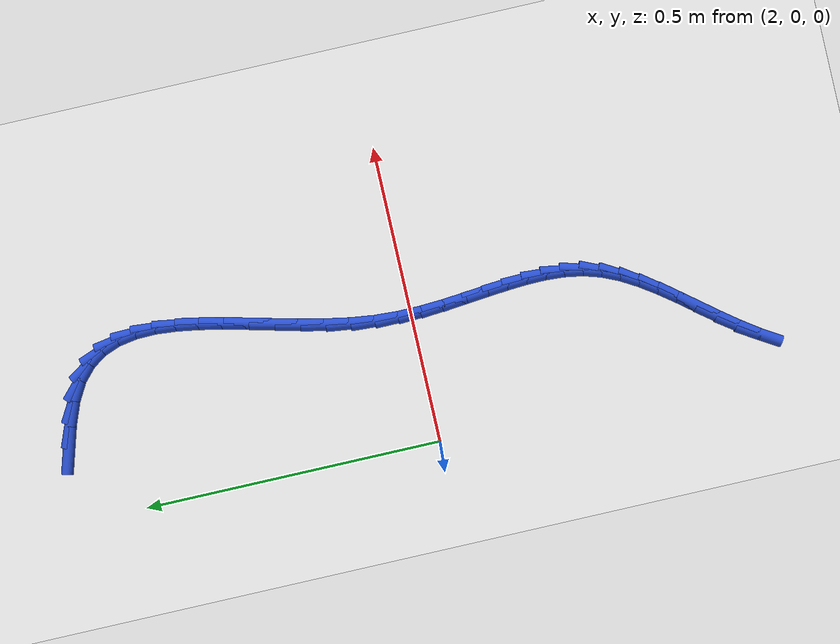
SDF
<sdf version="1.6">
 <world name="default">
  <model name="ground_plane">
   <static>1</static>
   <link name="link">
    <collision name="collision">
     <geometry><plane><normal>0 0 1</normal><size>100 100</size></plane></geometry>
     <surface><friction><ode><mu>100</mu><mu2>50</mu2></ode></friction></surface>
    </collision>
    <visual name="visual">
     <cast_shadows>0</cast_shadows>
     <geometry><plane><normal>0 0 1</normal><size>100 100</size></plane></geometry>
     <material>
      <script><uri>file://media/materials/scripts/gazebo.material</uri><name>Gazebo/WhiteGlow</name></script>
     </material>
    </visual>
   </link>
  </model>
  <model name="line">
   <link name="link_91">
    <pose>2.1238151320174015 0.6030887399953643 0.01 0 1.57 -0.29053588257929147</pose>
    <collision name="collision">
     <geometry><cylinder><radius>0.01</radius><length>0.08</length></cylinder></geometry>
    </collision>
    <visual name="visual">
     <material>
      <script><name>Gazebo/Blue</name><uri>file://media/materials/scripts/gazebo.material</uri></script>
     </material>
     <geometry><cylinder><radius>0.01</radius><length>0.08</length></cylinder></geometry>
    </visual>
   </link>
   <link name="link_92">
    <pose>2.164757541474575 0.5908471035624472 0.01 0 1.57 -0.3732599412215233</pose>
    <collision name="collision">
     <geometry><cylinder><radius>0.01</radius><length>0.08</length></cylinder></geometry>
    </collision>
    <visual name="visual">
     <material>
      <script><name>Gazebo/Blue</name><uri>file://media/materials/scripts/gazebo.material</uri></script>
     </material>
     <geometry><cylinder><radius>0.01</radius><length>0.08</length></cylinder></geometry>
    </visual>
   </link>
   <link name="link_93">
    <pose>2.2017538315727636 0.5763586799684173 0.01 0 1.57 -0.5231308511920362</pose>
    <collision name="collision">
     <geometry><cylinder><radius>0.01</radius><length>0.08</length></cylinder></geometry>
    </collision>
    <visual name="visual">
     <material>
      <script><name>Gazebo/Blue</name><uri>file://media/materials/scripts/gazebo.material</uri></script>
     </material>
     <geometry><cylinder><radius>0.01</radius><length>0.08</length></cylinder></geometry>
    </visual>
   </link>
   <link name="link_94">
    <pose>2.2325216295730774 0.5586140743322587 0.01 0 1.57 -0.744647816728111</pose>
    <collision name="collision">
     <geometry><cylinder><radius>0.01</radius><length>0.08</length></cylinder></geometry>
    </collision>
    <visual name="visual">
     <material>
      <script><name>Gazebo/Blue</name><uri>file://media/materials/scripts/gazebo.material</uri></script>
     </material>
     <geometry><cylinder><radius>0.01</radius><length>0.08</length></cylinder></geometry>
    </visual>
   </link>
   <link name="link_95">
    <pose>2.255876177495582 0.5370893839236424 0.01 0 1.57 -0.9868501659960137</pose>
    <collision name="collision">
     <geometry><cylinder><radius>0.01</radius><length>0.08</length></cylinder></geometry>
    </collision>
    <visual name="visual">
     <material>
      <script><name>Gazebo/Blue</name><uri>file://media/materials/scripts/gazebo.material</uri></script>
     </material>
     <geometry><cylinder><radius>0.01</radius><length>0.08</length></cylinder></geometry>
    </visual>
   </link>
   <link name="link_96">
    <pose>2.2724215137339296 0.5120519185861167 0.01 0 1.57 -1.2143293446025882</pose>
    <collision name="collision">
     <geometry><cylinder><radius>0.01</radius><length>0.08</length></cylinder></geometry>
    </collision>
    <visual name="visual">
     <material>
      <script><name>Gazebo/Blue</name><uri>file://media/materials/scripts/gazebo.material</uri></script>
     </material>
     <geometry><cylinder><radius>0.01</radius><length>0.08</length></cylinder></geometry>
    </visual>
   </link>
   <link name="link_97">
    <pose>2.2829262523897573 0.4838417825692519 0.01 0 1.57 -1.4037998761086086</pose>
    <collision name="collision">
     <geometry><cylinder><radius>0.01</radius><length>0.08</length></cylinder></geometry>
    </collision>
    <visual name="visual">
     <material>
      <script><name>Gazebo/Blue</name><uri>file://media/materials/scripts/gazebo.material</uri></script>
     </material>
     <geometry><cylinder><radius>0.01</radius><length>0.08</length></cylinder></geometry>
    </visual>
   </link>
   <link name="link_98">
    <pose>2.288159007564697 0.452799080122617 0.01 0 1.57 -1.549049875787846</pose>
    <collision name="collision">
     <geometry><cylinder><radius>0.01</radius><length>0.08</length></cylinder></geometry>
    </collision>
    <visual name="visual">
     <material>
      <script><name>Gazebo/Blue</name><uri>file://media/materials/scripts/gazebo.material</uri></script>
     </material>
     <geometry><cylinder><radius>0.01</radius><length>0.08</length></cylinder></geometry>
    </visual>
   </link>
   <link name="link_99">
    <pose>2.2888883933603843 0.41926391549578257 0.01 0 1.57 1.486781109514399</pose>
    <collision name="collision">
     <geometry><cylinder><radius>0.01</radius><length>0.08</length></cylinder></geometry>
    </collision>
    <visual name="visual">
     <material>
      <script><name>Gazebo/Blue</name><uri>file://media/materials/scripts/gazebo.material</uri></script>
     </material>
     <geometry><cylinder><radius>0.01</radius><length>0.08</length></cylinder></geometry>
    </visual>
   </link>
   <link name="link_100">
    <pose>2.285883023878452 0.38357639293831736 0.01 0 1.57 1.412880978112483</pose>
    <collision name="collision">
     <geometry><cylinder><radius>0.01</radius><length>0.08</length></cylinder></geometry>
    </collision>
    <visual name="visual">
     <material>
      <script><name>Gazebo/Blue</name><uri>file://media/materials/scripts/gazebo.material</uri></script>
     </material>
     <geometry><cylinder><radius>0.01</radius><length>0.08</length></cylinder></geometry>
    </visual>
   </link>
   <link name="link_101">
    <pose>2.279911513220536 0.34607661669979217 0.01 0 1.57 1.3641744351505958</pose>
    <collision name="collision">
     <geometry><cylinder><radius>0.01</radius><length>0.08</length></cylinder></geometry>
    </collision>
    <visual name="visual">
     <material>
      <script><name>Gazebo/Blue</name><uri>file://media/materials/scripts/gazebo.material</uri></script>
     </material>
     <geometry><cylinder><radius>0.01</radius><length>0.08</length></cylinder></geometry>
    </visual>
   </link>
   <link name="link_102">
    <pose>2.2717424754882694 0.30710469102977567 0.01 0 1.57 1.3358880803590423</pose>
    <collision name="collision">
     <geometry><cylinder><radius>0.01</radius><length>0.08</length></cylinder></geometry>
    </collision>
    <visual name="visual">
     <material>
      <script><name>Gazebo/Blue</name><uri>file://media/materials/scripts/gazebo.material</uri></script>
     </material>
     <geometry><cylinder><radius>0.01</radius><length>0.08</length></cylinder></geometry>
    </visual>
   </link>
   <link name="link_103">
    <pose>2.262144524783287 0.2670007201778386 0.01 0 1.57 1.3250290937424412</pose>
    <collision name="collision">
     <geometry><cylinder><radius>0.01</radius><length>0.08</length></cylinder></geometry>
    </collision>
    <visual name="visual">
     <material>
      <script><name>Gazebo/Blue</name><uri>file://media/materials/scripts/gazebo.material</uri></script>
     </material>
     <geometry><cylinder><radius>0.01</radius><length>0.08</length></cylinder></geometry>
    </visual>
   </link>
   <link name="link_104">
    <pose>2.251886275207222 0.2261048083935497 0.01 0 1.57 1.3300788155561363</pose>
    <collision name="collision">
     <geometry><cylinder><radius>0.01</radius><length>0.08</length></cylinder></geometry>
    </collision>
    <visual name="visual">
     <material>
      <script><name>Gazebo/Blue</name><uri>file://media/materials/scripts/gazebo.material</uri></script>
     </material>
     <geometry><cylinder><radius>0.01</radius><length>0.08</length></cylinder></geometry>
    </visual>
   </link>
   <link name="link_105">
    <pose>2.2417363408617095 0.18475705992647973 0.01 0 1.57 1.3507536034940444</pose>
    <collision name="collision">
     <geometry><cylinder><radius>0.01</radius><length>0.08</length></cylinder></geometry>
    </collision>
    <visual name="visual">
     <material>
      <script><name>Gazebo/Blue</name><uri>file://media/materials/scripts/gazebo.material</uri></script>
     </material>
     <geometry><cylinder><radius>0.01</radius><length>0.08</length></cylinder></geometry>
    </visual>
   </link>
   <link name="link_106">
    <pose>2.232463335848384 0.14329757902619733 0.01 0 1.57 1.3878714457839014</pose>
    <collision name="collision">
     <geometry><cylinder><radius>0.01</radius><length>0.08</length></cylinder></geometry>
    </collision>
    <visual name="visual">
     <material>
      <script><name>Gazebo/Blue</name><uri>file://media/materials/scripts/gazebo.material</uri></script>
     </material>
     <geometry><cylinder><radius>0.01</radius><length>0.08</length></cylinder></geometry>
    </visual>
   </link>
   <link name="link_107">
    <pose>2.2248358742688783 0.10206646994227335 0.01 0 1.57 1.4432832369738262</pose>
    <collision name="collision">
     <geometry><cylinder><radius>0.01</radius><length>0.08</length></cylinder></geometry>
    </collision>
    <visual name="visual">
     <material>
      <script><name>Gazebo/Blue</name><uri>file://media/materials/scripts/gazebo.material</uri></script>
     </material>
     <geometry><cylinder><radius>0.01</radius><length>0.08</length></cylinder></geometry>
    </visual>
   </link>
   <link name="link_108">
    <pose>2.2196225702248285 0.06140383692427645 0.01 0 1.57 1.5143344800301193</pose>
    <collision name="collision">
     <geometry><cylinder><radius>0.01</radius><length>0.08</length></cylinder></geometry>
    </collision>
    <visual name="visual">
     <material>
      <script><name>Gazebo/Blue</name><uri>file://media/materials/scripts/gazebo.material</uri></script>
     </material>
     <geometry><cylinder><radius>0.01</radius><length>0.08</length></cylinder></geometry>
    </visual>
   </link>
   <link name="link_109">
    <pose>2.2173728172626097 0.02160064432337661 0.01 0 1.57 -1.5636681695027848</pose>
    <collision name="collision">
     <geometry><cylinder><radius>0.01</radius><length>0.08</length></cylinder></geometry>
    </collision>
    <visual name="visual">
     <material>
      <script><name>Gazebo/Blue</name><uri>file://media/materials/scripts/gazebo.material</uri></script>
     </material>
     <geometry><cylinder><radius>0.01</radius><length>0.08</length></cylinder></geometry>
    </visual>
   </link>
   <link name="link_110">
    <pose>2.2176499207075384 -0.017273182430266442 0.01 0 1.57 -1.5157568466034474</pose>
    <collision name="collision">
     <geometry><cylinder><radius>0.01</radius><length>0.08</length></cylinder></geometry>
    </collision>
    <visual name="visual">
     <material>
      <script><name>Gazebo/Blue</name><uri>file://media/materials/scripts/gazebo.material</uri></script>
     </material>
     <geometry><cylinder><radius>0.01</radius><length>0.08</length></cylinder></geometry>
    </visual>
   </link>
   <link name="link_111">
    <pose>2.2197400456669727 -0.055209840922908544 0.01 0 1.57 -1.484792430941129</pose>
    <collision name="collision">
     <geometry><cylinder><radius>0.01</radius><length>0.08</length></cylinder></geometry>
    </collision>
    <visual name="visual">
     <material>
      <script><name>Gazebo/Blue</name><uri>file://media/materials/scripts/gazebo.material</uri></script>
     </material>
     <geometry><cylinder><radius>0.01</radius><length>0.08</length></cylinder></geometry>
    </visual>
   </link>
   <link name="link_112">
    <pose>2.2229293424904406 -0.0922015320488824 0.01 0 1.57 -1.4719319690370856</pose>
    <collision name="collision">
     <geometry><cylinder><radius>0.01</radius><length>0.08</length></cylinder></geometry>
    </collision>
    <visual name="visual">
     <material>
      <script><name>Gazebo/Blue</name><uri>file://media/materials/scripts/gazebo.material</uri></script>
     </material>
     <geometry><cylinder><radius>0.01</radius><length>0.08</length></cylinder></geometry>
    </visual>
   </link>
   <link name="link_113">
    <pose>2.226503961527471 -0.12824045670252032 0.01 0 1.57 -1.4785208266748302</pose>
    <collision name="collision">
     <geometry><cylinder><radius>0.01</radius><length>0.08</length></cylinder></geometry>
    </collision>
    <visual name="visual">
     <material>
      <script><name>Gazebo/Blue</name><uri>file://media/materials/scripts/gazebo.material</uri></script>
     </material>
     <geometry><cylinder><radius>0.01</radius><length>0.08</length></cylinder></geometry>
    </visual>
   </link>
   <link name="link_114">
    <pose>2.229750053127594 -0.16331881577815544 0.01 0 1.57 -1.5062798663819272</pose>
    <collision name="collision">
     <geometry><cylinder><radius>0.01</radius><length>0.08</length></cylinder></geometry>
    </collision>
    <visual name="visual">
     <material>
      <script><name>Gazebo/Blue</name><uri>file://media/materials/scripts/gazebo.material</uri></script>
     </material>
     <geometry><cylinder><radius>0.01</radius><length>0.08</length></cylinder></geometry>
    </visual>
   </link>
   <link name="link_115">
    <pose>2.2319537676403374 -0.19742881017011824 0.01 0 1.57 -1.5572916832677732</pose>
    <collision name="collision">
     <geometry><cylinder><radius>0.01</radius><length>0.08</length></cylinder></geometry>
    </collision>
    <visual name="visual">
     <material>
      <script><name>Gazebo/Blue</name><uri>file://media/materials/scripts/gazebo.material</uri></script>
     </material>
     <geometry><cylinder><radius>0.01</radius><length>0.08</length></cylinder></geometry>
    </visual>
   </link>
   <link name="link_116">
    <pose>2.2324012554152315 -0.23056264077274197 0.01 0 1.57 1.5079678698022</pose>
    <collision name="collision">
     <geometry><cylinder><radius>0.01</radius><length>0.08</length></cylinder></geometry>
    </collision>
    <visual name="visual">
     <material>
      <script><name>Gazebo/Blue</name><uri>file://media/materials/scripts/gazebo.material</uri></script>
     </material>
     <geometry><cylinder><radius>0.01</radius><length>0.08</length></cylinder></geometry>
    </visual>
   </link>
   <link name="link_117">
    <pose>2.2303786668018044 -0.2627125084803588 0.01 0 1.57 1.4052262076336153</pose>
    <collision name="collision">
     <geometry><cylinder><radius>0.01</radius><length>0.08</length></cylinder></geometry>
    </collision>
    <visual name="visual">
     <material>
      <script><name>Gazebo/Blue</name><uri>file://media/materials/scripts/gazebo.material</uri></script>
     </material>
     <geometry><cylinder><radius>0.01</radius><length>0.08</length></cylinder></geometry>
    </visual>
   </link>
   <link name="link_118">
    <pose>2.225172152149585 -0.2938706141873018 0.01 0 1.57 1.2778297162314178</pose>
    <collision name="collision">
     <geometry><cylinder><radius>0.01</radius><length>0.08</length></cylinder></geometry>
    </collision>
    <visual name="visual">
     <material>
      <script><name>Gazebo/Blue</name><uri>file://media/materials/scripts/gazebo.material</uri></script>
     </material>
     <geometry><cylinder><radius>0.01</radius><length>0.08</length></cylinder></geometry>
    </visual>
   </link>
   <link name="link_119">
    <pose>2.216074563974175 -0.32403038659619293 0.01 0 1.57 1.1473743268589836</pose>
    <collision name="collision">
     <geometry><cylinder><radius>0.01</radius><length>0.08</length></cylinder></geometry>
    </collision>
    <visual name="visual">
     <material>
      <script><name>Gazebo/Blue</name><uri>file://media/materials/scripts/gazebo.material</uri></script>
     </material>
     <geometry><cylinder><radius>0.01</radius><length>0.08</length></cylinder></geometry>
    </visual>
   </link>
   <link name="link_120">
    <pose>2.2028925331986002 -0.353279376426592 0.01 0 1.57 1.044886728368032</pose>
    <collision name="collision">
     <geometry><cylinder><radius>0.01</radius><length>0.08</length></cylinder></geometry>
    </collision>
    <visual name="visual">
     <material>
      <script><name>Gazebo/Blue</name><uri>file://media/materials/scripts/gazebo.material</uri></script>
     </material>
     <geometry><cylinder><radius>0.01</radius><length>0.08</length></cylinder></geometry>
    </visual>
   </link>
   <link name="link_121">
    <pose>2.1863008954229346 -0.3818641857986913 0.01 0 1.57 0.9717175743506666</pose>
    <collision name="collision">
     <geometry><cylinder><radius>0.01</radius><length>0.08</length></cylinder></geometry>
    </collision>
    <visual name="visual">
     <material>
      <script><name>Gazebo/Blue</name><uri>file://media/materials/scripts/gazebo.material</uri></script>
     </material>
     <geometry><cylinder><radius>0.01</radius><length>0.08</length></cylinder></geometry>
    </visual>
   </link>
   <link name="link_122">
    <pose>2.1670582488367285 -0.41004676178247434 0.01 0 1.57 0.9249408928104459</pose>
    <collision name="collision">
     <geometry><cylinder><radius>0.01</radius><length>0.08</length></cylinder></geometry>
    </collision>
    <visual name="visual">
     <material>
      <script><name>Gazebo/Blue</name><uri>file://media/materials/scripts/gazebo.material</uri></script>
     </material>
     <geometry><cylinder><radius>0.01</radius><length>0.08</length></cylinder></geometry>
    </visual>
   </link>
   <link name="link_123">
    <pose>2.1459231916295325 -0.43808905144792276 0.01 0 1.57 0.9017598928641719</pose>
    <collision name="collision">
     <geometry><cylinder><radius>0.01</radius><length>0.08</length></cylinder></geometry>
    </collision>
    <visual name="visual">
     <material>
      <script><name>Gazebo/Blue</name><uri>file://media/materials/scripts/gazebo.material</uri></script>
     </material>
     <geometry><cylinder><radius>0.01</radius><length>0.08</length></cylinder></geometry>
    </visual>
   </link>
   <link name="link_124">
    <pose>2.123654321990898 -0.46625300186501967 0.01 0 1.57 0.9002120465811286</pose>
    <collision name="collision">
     <geometry><cylinder><radius>0.01</radius><length>0.08</length></cylinder></geometry>
    </collision>
    <visual name="visual">
     <material>
      <script><name>Gazebo/Blue</name><uri>file://media/materials/scripts/gazebo.material</uri></script>
     </material>
     <geometry><cylinder><radius>0.01</radius><length>0.08</length></cylinder></geometry>
    </visual>
   </link>
   <link name="link_125">
    <pose>2.101010238110375 -0.49480056010374834 0.01 0 1.57 0.9193224964654279</pose>
    <collision name="collision">
     <geometry><cylinder><radius>0.01</radius><length>0.08</length></cylinder></geometry>
    </collision>
    <visual name="visual">
     <material>
      <script><name>Gazebo/Blue</name><uri>file://media/materials/scripts/gazebo.material</uri></script>
     </material>
     <geometry><cylinder><radius>0.01</radius><length>0.08</length></cylinder></geometry>
    </visual>
   </link>
   <link name="link_126">
    <pose>2.0787495381775134 -0.5239936732340919 0.01 0 1.57 0.958994533234254</pose>
    <collision name="collision">
     <geometry><cylinder><radius>0.01</radius><length>0.08</length></cylinder></geometry>
    </collision>
    <visual name="visual">
     <material>
      <script><name>Gazebo/Blue</name><uri>file://media/materials/scripts/gazebo.material</uri></script>
     </material>
     <geometry><cylinder><radius>0.01</radius><length>0.08</length></cylinder></geometry>
    </visual>
   </link>
   <link name="link_127">
    <pose>2.0576308203818647 -0.5540942883260316 0.01 0 1.57 1.019720946974603</pose>
    <collision name="collision">
     <geometry><cylinder><radius>0.01</radius><length>0.08</length></cylinder></geometry>
    </collision>
    <visual name="visual">
     <material>
      <script><name>Gazebo/Blue</name><uri>file://media/materials/scripts/gazebo.material</uri></script>
     </material>
     <geometry><cylinder><radius>0.01</radius><length>0.08</length></cylinder></geometry>
    </visual>
   </link>
  </model>
 </world>
</sdf>
